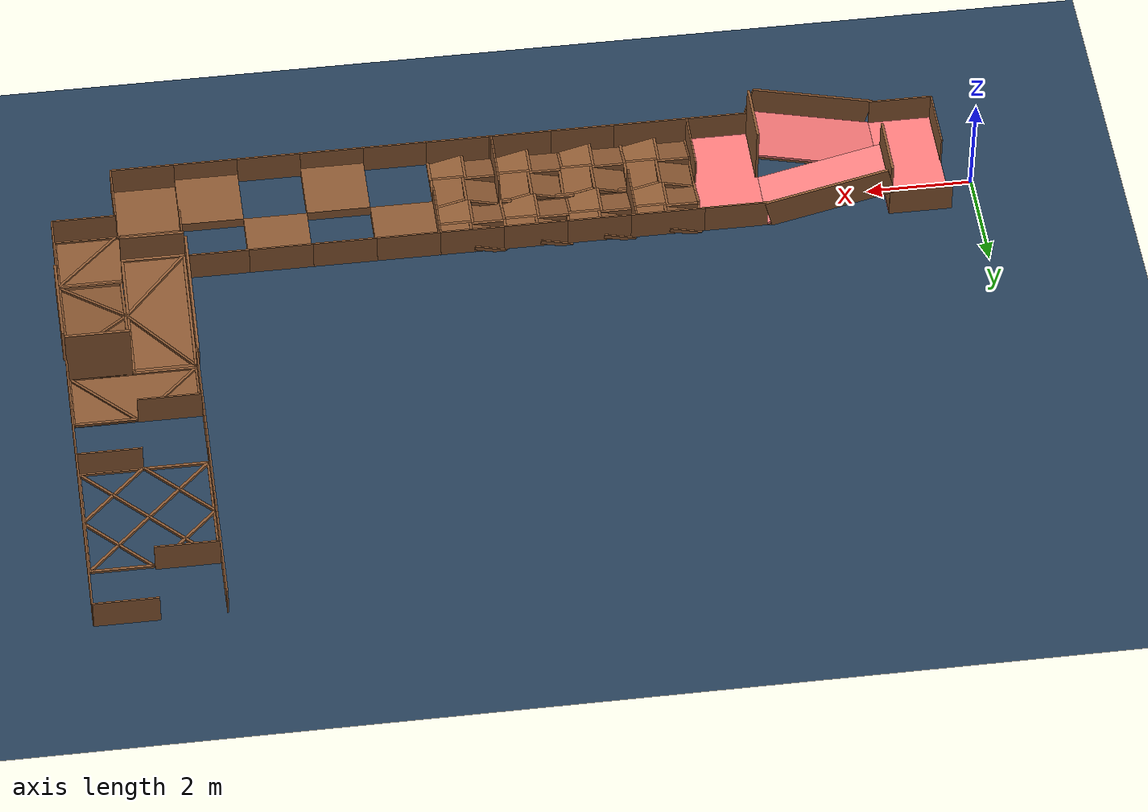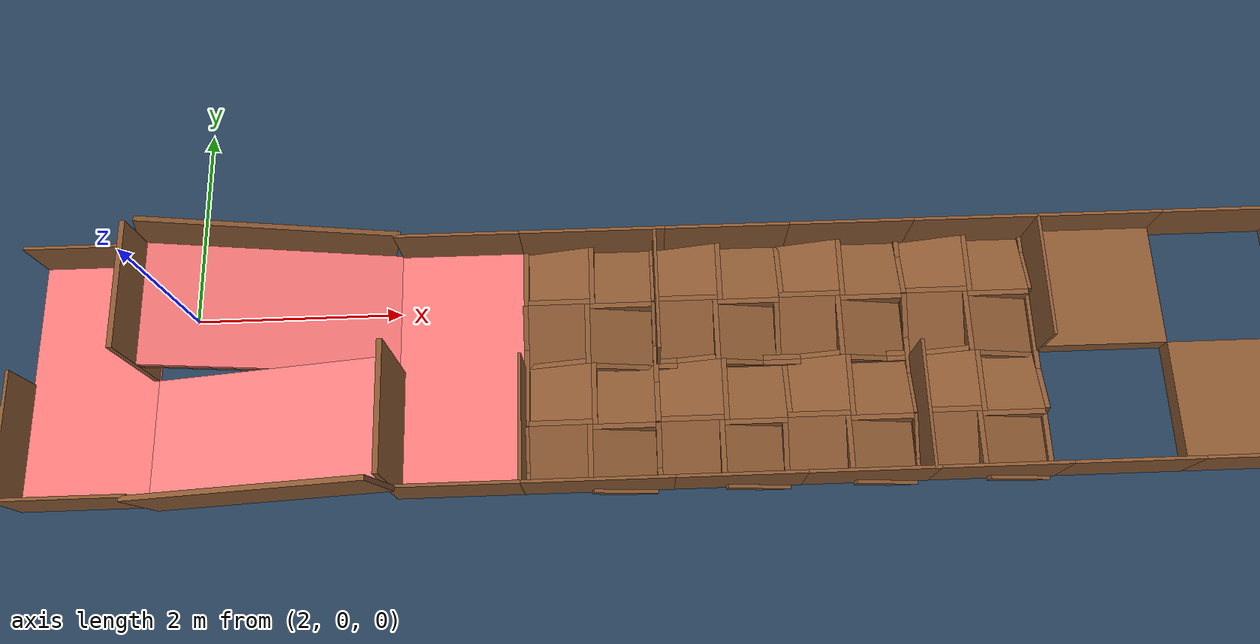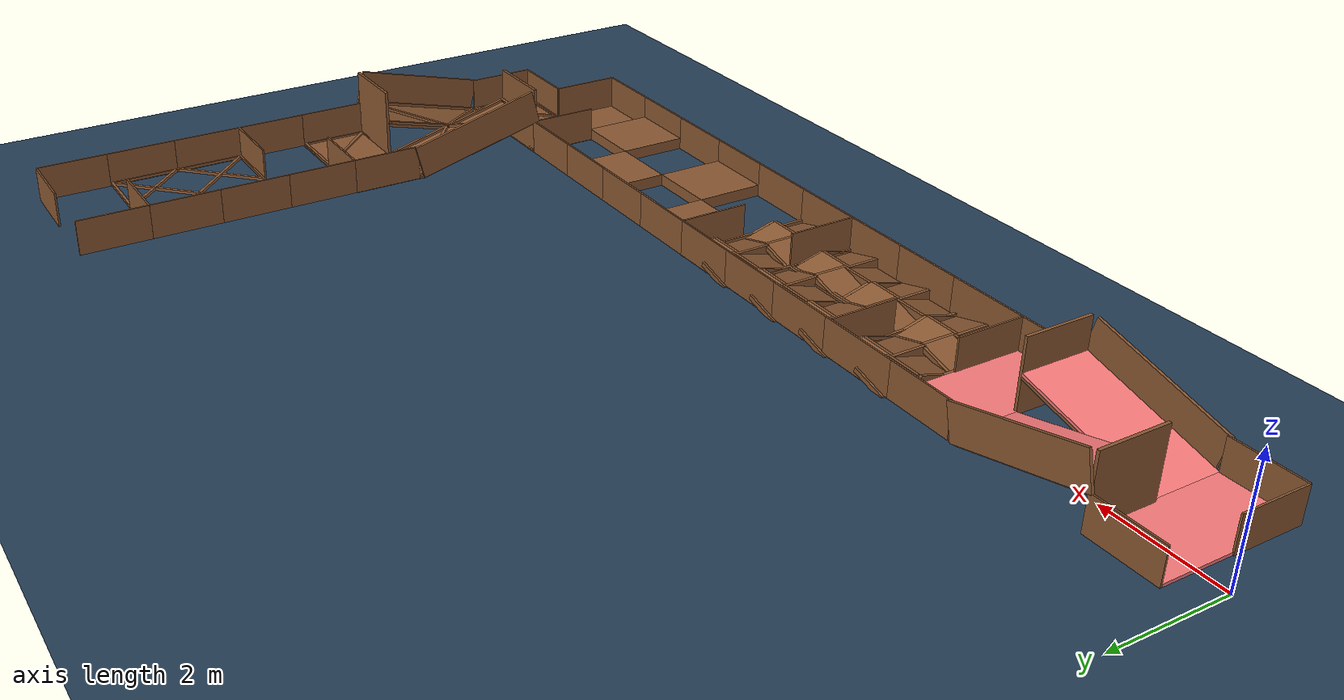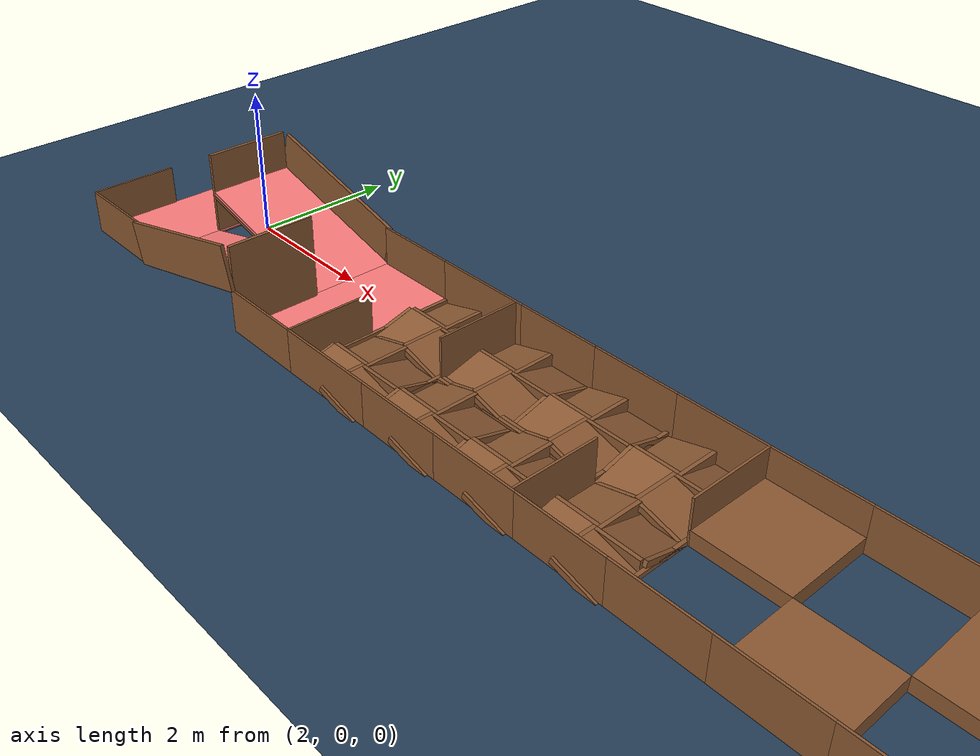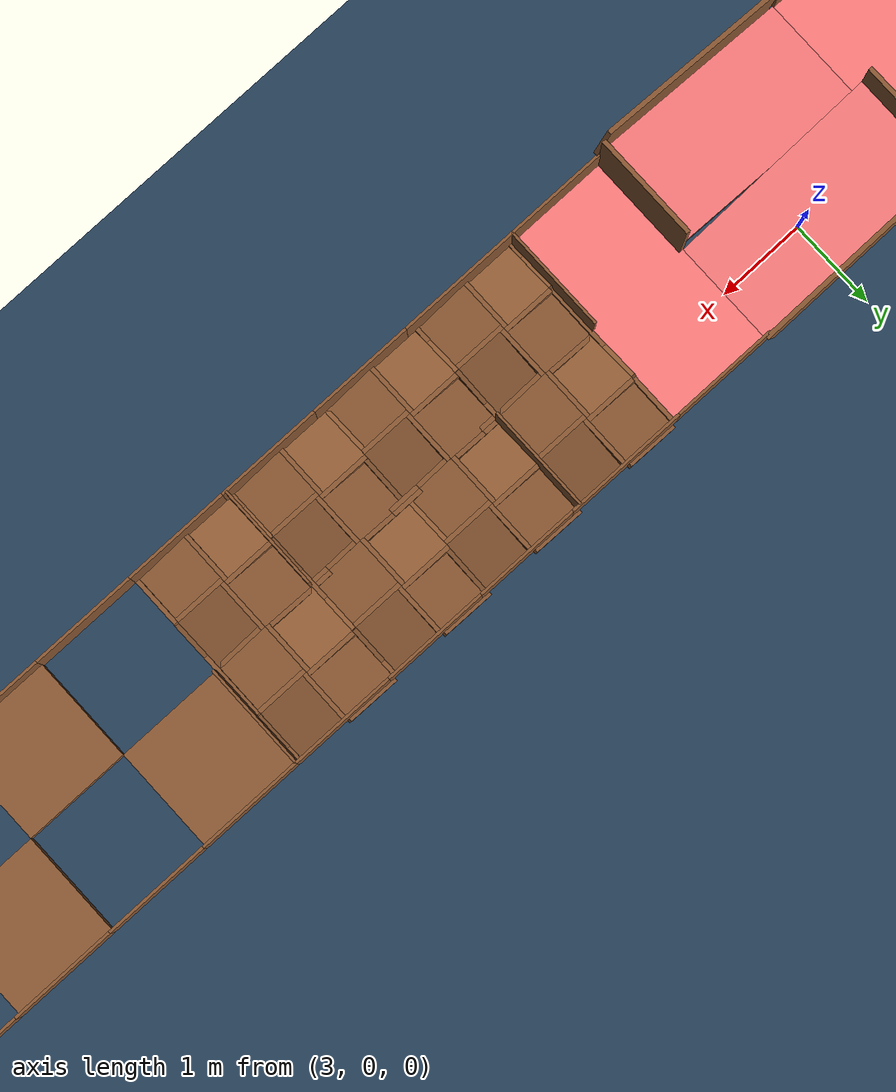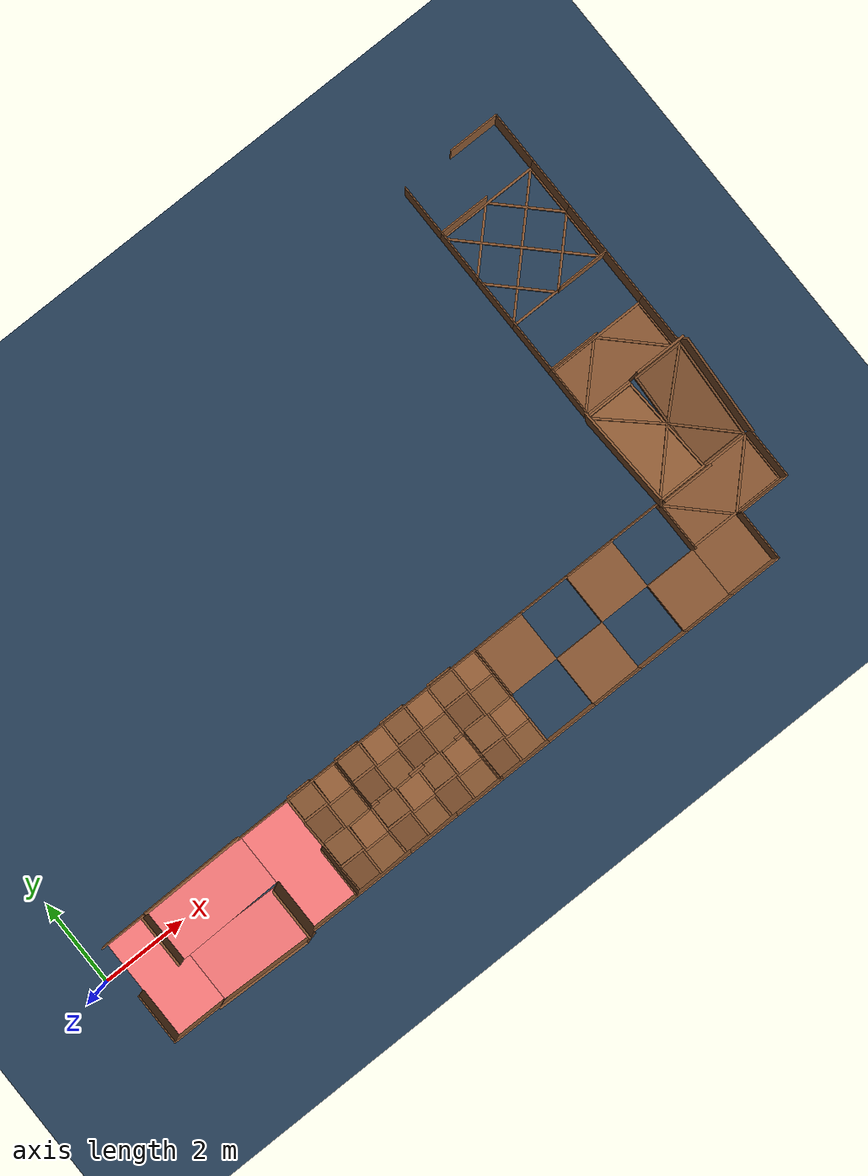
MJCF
<?xml version="1.0" encoding="utf-8"?>
<mujoco model="map_race_track">
  <statistic center="0 0 0.1" extent="0.8" />

  <visual>
    <headlight diffuse="0.6 0.6 0.6" ambient="0.3 0.3 0.3" specular="0 0 0" />
    <rgba haze="0.15 0.25 0.35 1" />
    <global azimuth="135" elevation="-25" />
    <quality shadowsize="4096" />
  </visual>
<asset>
    <texture type="skybox" builtin="gradient" rgb1="0.3 0.5 0.7" rgb2="0 0 0" width="512" height="3072" />
    <texture type="2d" name="groundplane" builtin="checker" mark="edge" rgb1="0.2 0.3 0.4" rgb2="0.1 0.2 0.3" markrgb="0.8 0.8 0.8" width="300" height="300" />
    <material name="groundplane" texture="groundplane" texuniform="true" texrepeat="5 5" reflectance="0.2" />
<texture name="wood_tex" type="2d" builtin="flat" rgb1="0.55 0.35 0.2" width="512" height="512" /><material name="wood_mat" texture="wood_tex" specular="0.2" shininess="0.1" rgba="1 1 1 1" /><texture name="sponge_tex" type="2d" builtin="flat" rgb1="1.0 0.7 0.7" width="512" height="512" /><material name="mat_sponge" texture="sponge_tex" specular="0.1" shininess="0.1" rgba="1 0.7 0.7 1" /></asset>

  <worldbody>
    <light pos="0 0 3" dir="0 0 -1" directional="true" castshadow="true" />
<geom name="floor" size="0 0 0.05" type="plane" material="groundplane" />
  <geom pos="2.833740429450787 2.220446049250313e-16 0.27579632720971" type="box" size="1.1981652640600127 0.6 0.025" quat="6.074277307224726e-17 0.12620041281310998 -7.727546580132487e-18 0.9920047660197004" material="wood_mat" friction="0.5 0.005 0.0001" /><geom pos="1.6550000000000002 2.220446049250313e-16 0.6" type="box" size="0.025 0.6 0.6" quat="6.123233995736766e-17 0.0 0.0 1.0" material="wood_mat" friction="0.5 0.005 0.0001" /><geom pos="2.833740429450787 0.6250000000000002 0.60079632720971" type="box" size="1.1981652640600127 0.025 0.3" quat="6.074277307224726e-17 0.12620041281310998 -7.727546580132487e-18 0.9920047660197004" material="wood_mat" friction="0.5 0.005 0.0001" /><geom pos="2.846259570549213 -1.2 0.27579632720971" type="box" size="1.1981652640600127 0.6 0.025" quat="0.9920047660197004 0.0 -0.12620041281310998 0.0" material="wood_mat" friction="0.5 0.005 0.0001" /><geom pos="4.025 -1.2 0.6" type="box" size="0.025 0.6 0.6" quat="1.0 0.0 0.0 0.0" material="wood_mat" friction="0.5 0.005 0.0001" /><geom pos="2.846259570549213 -1.825 0.60079632720971" type="box" size="1.1981652640600127 0.025 0.3" quat="0.9920047660197004 0.0 -0.12620041281310998 0.0" material="wood_mat" friction="0.5 0.005 0.0001" /><geom pos="4.6 -1.7999999999999998 0.3" type="box" size="0.6 0.3 0.015" quat="0.7071067811865476 0.7071067811865476 0.0 0.0" material="wood_mat" friction="0.5 0.005 0.0001" /><geom pos="1.08 -1.7999999999999998 0.3" type="box" size="0.6 0.3 0.015" quat="0.7071067811865476 0.7071067811865476 0.0 0.0" material="wood_mat" friction="0.5 0.005 0.0001" /><geom pos="4.6 0.6000000000000001 0.3" type="box" size="0.6 0.3 0.015" quat="0.7071067811865476 0.7071067811865476 0.0 0.0" material="wood_mat" friction="0.5 0.005 0.0001" /><geom pos="1.08 0.6000000000000001 0.3" type="box" size="0.6 0.3 0.015" quat="0.7071067811865476 0.7071067811865476 0.0 0.0" material="wood_mat" friction="0.5 0.005 0.0001" /><geom pos="0.48 -1.2 0.3" type="box" size="0.3 0.6 0.015" quat="0.7071067811865476 0.0 0.7071067811865476 0.0" material="wood_mat" friction="0.5 0.005 0.0001" /><geom pos="1.08 -0.6 0.025" type="box" size="0.6 1.2 0.025" quat="1.0 0.0 0.0 0.0" material="mat_sponge" solref="0.03 1" priority="1" solmix="1" friction="1.2 0.005 0.0001" /><geom pos="4.6 -0.6 0.025" type="box" size="0.6 1.2 0.025" quat="1.0 0.0 0.0 0.0" material="mat_sponge" solref="0.03 1" priority="1" solmix="1" friction="1.2 0.005 0.0001" /><geom pos="2.833740429450787 2.220446049250313e-16 0.32579632720970997" type="box" size="1.1981652640600127 0.6 0.025" quat="6.074277307224726e-17 0.12620041281310998 -7.727546580132487e-18 0.9920047660197004" material="mat_sponge" solref="0.03 1" priority="1" solmix="1" friction="1.2 0.005 0.0001" /><geom pos="2.846259570549213 -1.2 0.32579632720970997" type="box" size="1.1981652640600127 0.6 0.025" quat="0.9920047660197004 0.0 -0.12620041281310998 0.0" material="mat_sponge" solref="0.03 1" priority="1" solmix="1" friction="1.2 0.005 0.0001" /><geom pos="5.225 -0.6 0.0" type="box" size="1.2 0.025 0.05" quat="0.7071067811865476 0.0 0.0 0.7071067811865476" material="wood_mat" friction="0.5 0.005 0.0001" /><geom pos="5.55 -1.4934084623528479 0.05788461836407774" type="box" size="0.311004823113726 0.3 0.025" quat="0.7008236699478855 0.09405415270352165 -0.09405415270352165 0.7008236699478855" material="wood_mat" friction="0.5 0.005 0.0001" /><geom pos="5.55 -1.1749999999999998 0.082" type="box" size="0.025 0.3 0.082" quat="0.7071067811865476 0.0 0.0 0.7071067811865476" material="wood_mat" friction="0.5 0.005 0.0001" /><geom pos="5.875 -1.4934084623528479 0.04188461836407773" type="box" size="0.311004823113726 0.025 0.041" quat="0.7008236699478855 0.09405415270352165 -0.09405415270352165 0.7008236699478855" material="wood_mat" friction="0.5 0.005 0.0001" /><geom pos="5.225 -1.4934084623528479 0.04188461836407773" type="box" size="0.311004823113726 0.025 0.041" quat="0.7008236699478855 0.09405415270352165 -0.09405415270352165 0.7008236699478855" material="wood_mat" friction="0.5 0.005 0.0001" /><geom pos="5.556591537647153 -0.8999999999999999 0.05788461836407774" type="box" size="0.311004823113726 0.3 0.025" quat="0.9911143388723852 0.0 -0.1330126583508304 0.0" material="wood_mat" friction="0.5 0.005 0.0001" /><geom pos="5.875 -0.8999999999999999 0.082" type="box" size="0.025 0.3 0.082" quat="1.0 0.0 0.0 0.0" material="wood_mat" friction="0.5 0.005 0.0001" /><geom pos="5.556591537647153 -1.225 0.04188461836407773" type="box" size="0.311004823113726 0.025 0.041" quat="0.9911143388723852 0.0 -0.1330126583508304 0.0" material="wood_mat" friction="0.5 0.005 0.0001" /><geom pos="5.556591537647153 -0.575 0.04188461836407773" type="box" size="0.311004823113726 0.025 0.041" quat="0.9911143388723852 0.0 -0.1330126583508304 0.0" material="wood_mat" friction="0.5 0.005 0.0001" /><geom pos="6.143408462352848 -1.5 0.05788461836407774" type="box" size="0.311004823113726 0.3 0.025" quat="6.068825013445559e-17 0.1330126583508304 -8.144676314771245e-18 0.9911143388723852" material="wood_mat" friction="0.5 0.005 0.0001" /><geom pos="5.825 -1.5 0.082" type="box" size="0.025 0.3 0.082" quat="6.123233995736766e-17 0.0 0.0 1.0" material="wood_mat" friction="0.5 0.005 0.0001" /><geom pos="6.143408462352848 -1.1749999999999998 0.04188461836407773" type="box" size="0.311004823113726 0.025 0.041" quat="6.068825013445559e-17 0.1330126583508304 -8.144676314771245e-18 0.9911143388723852" material="wood_mat" friction="0.5 0.005 0.0001" /><geom pos="6.143408462352848 -1.825 0.04188461836407773" type="box" size="0.311004823113726 0.025 0.041" quat="6.068825013445559e-17 0.1330126583508304 -8.144676314771245e-18 0.9911143388723852" material="wood_mat" friction="0.5 0.005 0.0001" /><geom pos="6.15 -0.9065915376471521 0.05788461836407774" type="box" size="0.311004823113726 0.3 0.025" quat="-0.7008236699478854 0.09405415270352165 0.09405415270352163 0.7008236699478855" material="wood_mat" friction="0.5 0.005 0.0001" /><geom pos="6.15 -1.225 0.082" type="box" size="0.025 0.3 0.082" quat="-0.7071067811865475 -0.0 0.0 0.7071067811865476" material="wood_mat" friction="0.5 0.005 0.0001" /><geom pos="5.824999999999999 -0.9065915376471521 0.04188461836407773" type="box" size="0.311004823113726 0.025 0.041" quat="-0.7008236699478854 0.09405415270352165 0.09405415270352163 0.7008236699478855" material="wood_mat" friction="0.5 0.005 0.0001" /><geom pos="6.475 -0.9065915376471521 0.04188461836407773" type="box" size="0.311004823113726 0.025 0.041" quat="-0.7008236699478854 0.09405415270352165 0.09405415270352163 0.7008236699478855" material="wood_mat" friction="0.5 0.005 0.0001" /><geom pos="5.55 -0.2934084623528479 0.05788461836407774" type="box" size="0.311004823113726 0.3 0.025" quat="0.7008236699478855 0.09405415270352165 -0.09405415270352165 0.7008236699478855" material="wood_mat" friction="0.5 0.005 0.0001" /><geom pos="5.55 0.025000000000000133 0.082" type="box" size="0.025 0.3 0.082" quat="0.7071067811865476 0.0 0.0 0.7071067811865476" material="wood_mat" friction="0.5 0.005 0.0001" /><geom pos="5.875 -0.2934084623528479 0.04188461836407773" type="box" size="0.311004823113726 0.025 0.041" quat="0.7008236699478855 0.09405415270352165 -0.09405415270352165 0.7008236699478855" material="wood_mat" friction="0.5 0.005 0.0001" /><geom pos="5.225 -0.2934084623528479 0.04188461836407773" type="box" size="0.311004823113726 0.025 0.041" quat="0.7008236699478855 0.09405415270352165 -0.09405415270352165 0.7008236699478855" material="wood_mat" friction="0.5 0.005 0.0001" /><geom pos="5.556591537647153 0.30000000000000004 0.05788461836407774" type="box" size="0.311004823113726 0.3 0.025" quat="0.9911143388723852 0.0 -0.1330126583508304 0.0" material="wood_mat" friction="0.5 0.005 0.0001" /><geom pos="5.875 0.30000000000000004 0.082" type="box" size="0.025 0.3 0.082" quat="1.0 0.0 0.0 0.0" material="wood_mat" friction="0.5 0.005 0.0001" /><geom pos="5.556591537647153 -0.02499999999999991 0.04188461836407773" type="box" size="0.311004823113726 0.025 0.041" quat="0.9911143388723852 0.0 -0.1330126583508304 0.0" material="wood_mat" friction="0.5 0.005 0.0001" /><geom pos="5.556591537647153 0.625 0.04188461836407773" type="box" size="0.311004823113726 0.025 0.041" quat="0.9911143388723852 0.0 -0.1330126583508304 0.0" material="wood_mat" friction="0.5 0.005 0.0001" /><geom pos="6.143408462352848 -0.30000000000000004 0.05788461836407774" type="box" size="0.311004823113726 0.3 0.025" quat="6.068825013445559e-17 0.1330126583508304 -8.144676314771245e-18 0.9911143388723852" material="wood_mat" friction="0.5 0.005 0.0001" /><geom pos="5.825 -0.29999999999999993 0.082" type="box" size="0.025 0.3 0.082" quat="6.123233995736766e-17 0.0 0.0 1.0" material="wood_mat" friction="0.5 0.005 0.0001" /><geom pos="6.143408462352848 0.025000000000000133 0.04188461836407773" type="box" size="0.311004823113726 0.025 0.041" quat="6.068825013445559e-17 0.1330126583508304 -8.144676314771245e-18 0.9911143388723852" material="wood_mat" friction="0.5 0.005 0.0001" /><geom pos="6.143408462352848 -0.625 0.04188461836407773" type="box" size="0.311004823113726 0.025 0.041" quat="6.068825013445559e-17 0.1330126583508304 -8.144676314771245e-18 0.9911143388723852" material="wood_mat" friction="0.5 0.005 0.0001" /><geom pos="6.15 0.2934084623528477 0.05788461836407774" type="box" size="0.311004823113726 0.3 0.025" quat="-0.7008236699478854 0.09405415270352165 0.09405415270352163 0.7008236699478855" material="wood_mat" friction="0.5 0.005 0.0001" /><geom pos="6.15 -0.025000000000000133 0.082" type="box" size="0.025 0.3 0.082" quat="-0.7071067811865475 -0.0 0.0 0.7071067811865476" material="wood_mat" friction="0.5 0.005 0.0001" /><geom pos="5.824999999999999 0.2934084623528479 0.04188461836407773" type="box" size="0.311004823113726 0.025 0.041" quat="-0.7008236699478854 0.09405415270352165 0.09405415270352163 0.7008236699478855" material="wood_mat" friction="0.5 0.005 0.0001" /><geom pos="6.475 0.2934084623528477 0.04188461836407773" type="box" size="0.311004823113726 0.025 0.041" quat="-0.7008236699478854 0.09405415270352165 0.09405415270352163 0.7008236699478855" material="wood_mat" friction="0.5 0.005 0.0001" /><geom pos="6.475 -0.6 0.0" type="box" size="1.2 0.025 0.05" quat="0.7071067811865476 0.0 0.0 0.7071067811865476" material="wood_mat" friction="0.5 0.005 0.0001" /><geom pos="6.800000000000001 -1.4934084623528479 0.05788461836407774" type="box" size="0.311004823113726 0.3 0.025" quat="0.7008236699478855 0.09405415270352165 -0.09405415270352165 0.7008236699478855" material="wood_mat" friction="0.5 0.005 0.0001" /><geom pos="6.800000000000001 -1.1749999999999998 0.082" type="box" size="0.025 0.3 0.082" quat="0.7071067811865476 0.0 0.0 0.7071067811865476" material="wood_mat" friction="0.5 0.005 0.0001" /><geom pos="7.125 -1.4934084623528479 0.04188461836407773" type="box" size="0.311004823113726 0.025 0.041" quat="0.7008236699478855 0.09405415270352165 -0.09405415270352165 0.7008236699478855" material="wood_mat" friction="0.5 0.005 0.0001" /><geom pos="6.475 -1.4934084623528479 0.04188461836407773" type="box" size="0.311004823113726 0.025 0.041" quat="0.7008236699478855 0.09405415270352165 -0.09405415270352165 0.7008236699478855" material="wood_mat" friction="0.5 0.005 0.0001" /><geom pos="6.806591537647153 -0.8999999999999999 0.05788461836407774" type="box" size="0.311004823113726 0.3 0.025" quat="0.9911143388723852 0.0 -0.1330126583508304 0.0" material="wood_mat" friction="0.5 0.005 0.0001" /><geom pos="7.125 -0.8999999999999999 0.082" type="box" size="0.025 0.3 0.082" quat="1.0 0.0 0.0 0.0" material="wood_mat" friction="0.5 0.005 0.0001" /><geom pos="6.806591537647153 -1.225 0.04188461836407773" type="box" size="0.311004823113726 0.025 0.041" quat="0.9911143388723852 0.0 -0.1330126583508304 0.0" material="wood_mat" friction="0.5 0.005 0.0001" /><geom pos="6.806591537647153 -0.575 0.04188461836407773" type="box" size="0.311004823113726 0.025 0.041" quat="0.9911143388723852 0.0 -0.1330126583508304 0.0" material="wood_mat" friction="0.5 0.005 0.0001" /><geom pos="7.393408462352848 -1.5 0.05788461836407774" type="box" size="0.311004823113726 0.3 0.025" quat="6.068825013445559e-17 0.1330126583508304 -8.144676314771245e-18 0.9911143388723852" material="wood_mat" friction="0.5 0.005 0.0001" /><geom pos="7.075 -1.5 0.082" type="box" size="0.025 0.3 0.082" quat="6.123233995736766e-17 0.0 0.0 1.0" material="wood_mat" friction="0.5 0.005 0.0001" /><geom pos="7.393408462352848 -1.1749999999999998 0.04188461836407773" type="box" size="0.311004823113726 0.025 0.041" quat="6.068825013445559e-17 0.1330126583508304 -8.144676314771245e-18 0.9911143388723852" material="wood_mat" friction="0.5 0.005 0.0001" /><geom pos="7.393408462352848 -1.825 0.04188461836407773" type="box" size="0.311004823113726 0.025 0.041" quat="6.068825013445559e-17 0.1330126583508304 -8.144676314771245e-18 0.9911143388723852" material="wood_mat" friction="0.5 0.005 0.0001" /><geom pos="7.4 -0.9065915376471521 0.05788461836407774" type="box" size="0.311004823113726 0.3 0.025" quat="-0.7008236699478854 0.09405415270352165 0.09405415270352163 0.7008236699478855" material="wood_mat" friction="0.5 0.005 0.0001" /><geom pos="7.4 -1.225 0.082" type="box" size="0.025 0.3 0.082" quat="-0.7071067811865475 -0.0 0.0 0.7071067811865476" material="wood_mat" friction="0.5 0.005 0.0001" /><geom pos="7.074999999999999 -0.9065915376471521 0.04188461836407773" type="box" size="0.311004823113726 0.025 0.041" quat="-0.7008236699478854 0.09405415270352165 0.09405415270352163 0.7008236699478855" material="wood_mat" friction="0.5 0.005 0.0001" /><geom pos="7.725 -0.9065915376471521 0.04188461836407773" type="box" size="0.311004823113726 0.025 0.041" quat="-0.7008236699478854 0.09405415270352165 0.09405415270352163 0.7008236699478855" material="wood_mat" friction="0.5 0.005 0.0001" /><geom pos="6.800000000000001 -0.2934084623528479 0.05788461836407774" type="box" size="0.311004823113726 0.3 0.025" quat="0.7008236699478855 0.09405415270352165 -0.09405415270352165 0.7008236699478855" material="wood_mat" friction="0.5 0.005 0.0001" /><geom pos="6.800000000000001 0.025000000000000133 0.082" type="box" size="0.025 0.3 0.082" quat="0.7071067811865476 0.0 0.0 0.7071067811865476" material="wood_mat" friction="0.5 0.005 0.0001" /><geom pos="7.125 -0.2934084623528479 0.04188461836407773" type="box" size="0.311004823113726 0.025 0.041" quat="0.7008236699478855 0.09405415270352165 -0.09405415270352165 0.7008236699478855" material="wood_mat" friction="0.5 0.005 0.0001" /><geom pos="6.475 -0.2934084623528479 0.04188461836407773" type="box" size="0.311004823113726 0.025 0.041" quat="0.7008236699478855 0.09405415270352165 -0.09405415270352165 0.7008236699478855" material="wood_mat" friction="0.5 0.005 0.0001" /><geom pos="6.806591537647153 0.30000000000000004 0.05788461836407774" type="box" size="0.311004823113726 0.3 0.025" quat="0.9911143388723852 0.0 -0.1330126583508304 0.0" material="wood_mat" friction="0.5 0.005 0.0001" /><geom pos="7.125 0.30000000000000004 0.082" type="box" size="0.025 0.3 0.082" quat="1.0 0.0 0.0 0.0" material="wood_mat" friction="0.5 0.005 0.0001" /><geom pos="6.806591537647153 -0.02499999999999991 0.04188461836407773" type="box" size="0.311004823113726 0.025 0.041" quat="0.9911143388723852 0.0 -0.1330126583508304 0.0" material="wood_mat" friction="0.5 0.005 0.0001" /><geom pos="6.806591537647153 0.625 0.04188461836407773" type="box" size="0.311004823113726 0.025 0.041" quat="0.9911143388723852 0.0 -0.1330126583508304 0.0" material="wood_mat" friction="0.5 0.005 0.0001" /><geom pos="7.393408462352848 -0.30000000000000004 0.05788461836407774" type="box" size="0.311004823113726 0.3 0.025" quat="6.068825013445559e-17 0.1330126583508304 -8.144676314771245e-18 0.9911143388723852" material="wood_mat" friction="0.5 0.005 0.0001" /><geom pos="7.075 -0.29999999999999993 0.082" type="box" size="0.025 0.3 0.082" quat="6.123233995736766e-17 0.0 0.0 1.0" material="wood_mat" friction="0.5 0.005 0.0001" /><geom pos="7.393408462352848 0.025000000000000133 0.04188461836407773" type="box" size="0.311004823113726 0.025 0.041" quat="6.068825013445559e-17 0.1330126583508304 -8.144676314771245e-18 0.9911143388723852" material="wood_mat" friction="0.5 0.005 0.0001" /><geom pos="7.393408462352848 -0.625 0.04188461836407773" type="box" size="0.311004823113726 0.025 0.041" quat="6.068825013445559e-17 0.1330126583508304 -8.144676314771245e-18 0.9911143388723852" material="wood_mat" friction="0.5 0.005 0.0001" /><geom pos="7.4 0.2934084623528477 0.05788461836407774" type="box" size="0.311004823113726 0.3 0.025" quat="-0.7008236699478854 0.09405415270352165 0.09405415270352163 0.7008236699478855" material="wood_mat" friction="0.5 0.005 0.0001" /><geom pos="7.4 -0.025000000000000133 0.082" type="box" size="0.025 0.3 0.082" quat="-0.7071067811865475 -0.0 0.0 0.7071067811865476" material="wood_mat" friction="0.5 0.005 0.0001" /><geom pos="7.074999999999999 0.2934084623528479 0.04188461836407773" type="box" size="0.311004823113726 0.025 0.041" quat="-0.7008236699478854 0.09405415270352165 0.09405415270352163 0.7008236699478855" material="wood_mat" friction="0.5 0.005 0.0001" /><geom pos="7.725 0.2934084623528477 0.04188461836407773" type="box" size="0.311004823113726 0.025 0.041" quat="-0.7008236699478854 0.09405415270352165 0.09405415270352163 0.7008236699478855" material="wood_mat" friction="0.5 0.005 0.0001" /><geom pos="8.0 -1.4934084623528479 0.05788461836407774" type="box" size="0.311004823113726 0.3 0.025" quat="0.7008236699478855 0.09405415270352165 -0.09405415270352165 0.7008236699478855" material="wood_mat" friction="0.5 0.005 0.0001" /><geom pos="8.0 -1.1749999999999998 0.082" type="box" size="0.025 0.3 0.082" quat="0.7071067811865476 0.0 0.0 0.7071067811865476" material="wood_mat" friction="0.5 0.005 0.0001" /><geom pos="8.325 -1.4934084623528479 0.04188461836407773" type="box" size="0.311004823113726 0.025 0.041" quat="0.7008236699478855 0.09405415270352165 -0.09405415270352165 0.7008236699478855" material="wood_mat" friction="0.5 0.005 0.0001" /><geom pos="7.675 -1.4934084623528479 0.04188461836407773" type="box" size="0.311004823113726 0.025 0.041" quat="0.7008236699478855 0.09405415270352165 -0.09405415270352165 0.7008236699478855" material="wood_mat" friction="0.5 0.005 0.0001" /><geom pos="8.006591537647152 -0.8999999999999999 0.05788461836407774" type="box" size="0.311004823113726 0.3 0.025" quat="0.9911143388723852 0.0 -0.1330126583508304 0.0" material="wood_mat" friction="0.5 0.005 0.0001" /><geom pos="8.325 -0.8999999999999999 0.082" type="box" size="0.025 0.3 0.082" quat="1.0 0.0 0.0 0.0" material="wood_mat" friction="0.5 0.005 0.0001" /><geom pos="8.006591537647152 -1.225 0.04188461836407773" type="box" size="0.311004823113726 0.025 0.041" quat="0.9911143388723852 0.0 -0.1330126583508304 0.0" material="wood_mat" friction="0.5 0.005 0.0001" /><geom pos="8.006591537647152 -0.575 0.04188461836407773" type="box" size="0.311004823113726 0.025 0.041" quat="0.9911143388723852 0.0 -0.1330126583508304 0.0" material="wood_mat" friction="0.5 0.005 0.0001" /><geom pos="8.593408462352848 -1.5 0.05788461836407774" type="box" size="0.311004823113726 0.3 0.025" quat="6.068825013445559e-17 0.1330126583508304 -8.144676314771245e-18 0.9911143388723852" material="wood_mat" friction="0.5 0.005 0.0001" /><geom pos="8.274999999999999 -1.5 0.082" type="box" size="0.025 0.3 0.082" quat="6.123233995736766e-17 0.0 0.0 1.0" material="wood_mat" friction="0.5 0.005 0.0001" /><geom pos="8.593408462352848 -1.1749999999999998 0.04188461836407773" type="box" size="0.311004823113726 0.025 0.041" quat="6.068825013445559e-17 0.1330126583508304 -8.144676314771245e-18 0.9911143388723852" material="wood_mat" friction="0.5 0.005 0.0001" /><geom pos="8.593408462352848 -1.825 0.04188461836407773" type="box" size="0.311004823113726 0.025 0.041" quat="6.068825013445559e-17 0.1330126583508304 -8.144676314771245e-18 0.9911143388723852" material="wood_mat" friction="0.5 0.005 0.0001" /><geom pos="8.6 -0.9065915376471521 0.05788461836407774" type="box" size="0.311004823113726 0.3 0.025" quat="-0.7008236699478854 0.09405415270352165 0.09405415270352163 0.7008236699478855" material="wood_mat" friction="0.5 0.005 0.0001" /><geom pos="8.6 -1.225 0.082" type="box" size="0.025 0.3 0.082" quat="-0.7071067811865475 -0.0 0.0 0.7071067811865476" material="wood_mat" friction="0.5 0.005 0.0001" /><geom pos="8.274999999999999 -0.9065915376471521 0.04188461836407773" type="box" size="0.311004823113726 0.025 0.041" quat="-0.7008236699478854 0.09405415270352165 0.09405415270352163 0.7008236699478855" material="wood_mat" friction="0.5 0.005 0.0001" /><geom pos="8.925 -0.9065915376471521 0.04188461836407773" type="box" size="0.311004823113726 0.025 0.041" quat="-0.7008236699478854 0.09405415270352165 0.09405415270352163 0.7008236699478855" material="wood_mat" friction="0.5 0.005 0.0001" /><geom pos="8.0 -0.2934084623528479 0.05788461836407774" type="box" size="0.311004823113726 0.3 0.025" quat="0.7008236699478855 0.09405415270352165 -0.09405415270352165 0.7008236699478855" material="wood_mat" friction="0.5 0.005 0.0001" /><geom pos="8.0 0.025000000000000133 0.082" type="box" size="0.025 0.3 0.082" quat="0.7071067811865476 0.0 0.0 0.7071067811865476" material="wood_mat" friction="0.5 0.005 0.0001" /><geom pos="8.325 -0.2934084623528479 0.04188461836407773" type="box" size="0.311004823113726 0.025 0.041" quat="0.7008236699478855 0.09405415270352165 -0.09405415270352165 0.7008236699478855" material="wood_mat" friction="0.5 0.005 0.0001" /><geom pos="7.675 -0.2934084623528479 0.04188461836407773" type="box" size="0.311004823113726 0.025 0.041" quat="0.7008236699478855 0.09405415270352165 -0.09405415270352165 0.7008236699478855" material="wood_mat" friction="0.5 0.005 0.0001" /><geom pos="8.006591537647152 0.30000000000000004 0.05788461836407774" type="box" size="0.311004823113726 0.3 0.025" quat="0.9911143388723852 0.0 -0.1330126583508304 0.0" material="wood_mat" friction="0.5 0.005 0.0001" /><geom pos="8.325 0.30000000000000004 0.082" type="box" size="0.025 0.3 0.082" quat="1.0 0.0 0.0 0.0" material="wood_mat" friction="0.5 0.005 0.0001" /><geom pos="8.006591537647152 -0.02499999999999991 0.04188461836407773" type="box" size="0.311004823113726 0.025 0.041" quat="0.9911143388723852 0.0 -0.1330126583508304 0.0" material="wood_mat" friction="0.5 0.005 0.0001" /><geom pos="8.006591537647152 0.625 0.04188461836407773" type="box" size="0.311004823113726 0.025 0.041" quat="0.9911143388723852 0.0 -0.1330126583508304 0.0" material="wood_mat" friction="0.5 0.005 0.0001" /><geom pos="8.593408462352848 -0.30000000000000004 0.05788461836407774" type="box" size="0.311004823113726 0.3 0.025" quat="6.068825013445559e-17 0.1330126583508304 -8.144676314771245e-18 0.9911143388723852" material="wood_mat" friction="0.5 0.005 0.0001" /><geom pos="8.274999999999999 -0.29999999999999993 0.082" type="box" size="0.025 0.3 0.082" quat="6.123233995736766e-17 0.0 0.0 1.0" material="wood_mat" friction="0.5 0.005 0.0001" /><geom pos="8.593408462352848 0.025000000000000133 0.04188461836407773" type="box" size="0.311004823113726 0.025 0.041" quat="6.068825013445559e-17 0.1330126583508304 -8.144676314771245e-18 0.9911143388723852" material="wood_mat" friction="0.5 0.005 0.0001" /><geom pos="8.593408462352848 -0.625 0.04188461836407773" type="box" size="0.311004823113726 0.025 0.041" quat="6.068825013445559e-17 0.1330126583508304 -8.144676314771245e-18 0.9911143388723852" material="wood_mat" friction="0.5 0.005 0.0001" /><geom pos="8.6 0.2934084623528477 0.05788461836407774" type="box" size="0.311004823113726 0.3 0.025" quat="-0.7008236699478854 0.09405415270352165 0.09405415270352163 0.7008236699478855" material="wood_mat" friction="0.5 0.005 0.0001" /><geom pos="8.6 -0.025000000000000133 0.082" type="box" size="0.025 0.3 0.082" quat="-0.7071067811865475 -0.0 0.0 0.7071067811865476" material="wood_mat" friction="0.5 0.005 0.0001" /><geom pos="8.274999999999999 0.2934084623528479 0.04188461836407773" type="box" size="0.311004823113726 0.025 0.041" quat="-0.7008236699478854 0.09405415270352165 0.09405415270352163 0.7008236699478855" material="wood_mat" friction="0.5 0.005 0.0001" /><geom pos="8.925 0.2934084623528477 0.04188461836407773" type="box" size="0.311004823113726 0.025 0.041" quat="-0.7008236699478854 0.09405415270352165 0.09405415270352163 0.7008236699478855" material="wood_mat" friction="0.5 0.005 0.0001" /><geom pos="7.7 -0.625 0.0" type="box" size="1.2 0.025 0.05" quat="1.0 0.0 0.0 0.0" material="wood_mat" friction="0.5 0.005 0.0001" /><geom pos="7.7 -0.575 0.0" type="box" size="1.2 0.025 0.05" quat="1.0 0.0 0.0 0.0" material="wood_mat" friction="0.5 0.005 0.0001" /><geom pos="8.925 -0.6 0.0" type="box" size="1.2 0.025 0.05" quat="0.7071067811865476 0.0 0.0 0.7071067811865476" material="wood_mat" friction="0.5 0.005 0.0001" /><geom pos="9.25 -1.4934084623528479 0.05788461836407774" type="box" size="0.311004823113726 0.3 0.025" quat="0.7008236699478855 0.09405415270352165 -0.09405415270352165 0.7008236699478855" material="wood_mat" friction="0.5 0.005 0.0001" /><geom pos="9.25 -1.1749999999999998 0.082" type="box" size="0.025 0.3 0.082" quat="0.7071067811865476 0.0 0.0 0.7071067811865476" material="wood_mat" friction="0.5 0.005 0.0001" /><geom pos="9.575 -1.4934084623528479 0.04188461836407773" type="box" size="0.311004823113726 0.025 0.041" quat="0.7008236699478855 0.09405415270352165 -0.09405415270352165 0.7008236699478855" material="wood_mat" friction="0.5 0.005 0.0001" /><geom pos="8.925 -1.4934084623528479 0.04188461836407773" type="box" size="0.311004823113726 0.025 0.041" quat="0.7008236699478855 0.09405415270352165 -0.09405415270352165 0.7008236699478855" material="wood_mat" friction="0.5 0.005 0.0001" /><geom pos="9.256591537647152 -0.8999999999999999 0.05788461836407774" type="box" size="0.311004823113726 0.3 0.025" quat="0.9911143388723852 0.0 -0.1330126583508304 0.0" material="wood_mat" friction="0.5 0.005 0.0001" /><geom pos="9.575 -0.8999999999999999 0.082" type="box" size="0.025 0.3 0.082" quat="1.0 0.0 0.0 0.0" material="wood_mat" friction="0.5 0.005 0.0001" /><geom pos="9.256591537647152 -1.225 0.04188461836407773" type="box" size="0.311004823113726 0.025 0.041" quat="0.9911143388723852 0.0 -0.1330126583508304 0.0" material="wood_mat" friction="0.5 0.005 0.0001" /><geom pos="9.256591537647152 -0.575 0.04188461836407773" type="box" size="0.311004823113726 0.025 0.041" quat="0.9911143388723852 0.0 -0.1330126583508304 0.0" material="wood_mat" friction="0.5 0.005 0.0001" /><geom pos="9.843408462352848 -1.5 0.05788461836407774" type="box" size="0.311004823113726 0.3 0.025" quat="6.068825013445559e-17 0.1330126583508304 -8.144676314771245e-18 0.9911143388723852" material="wood_mat" friction="0.5 0.005 0.0001" /><geom pos="9.524999999999999 -1.5 0.082" type="box" size="0.025 0.3 0.082" quat="6.123233995736766e-17 0.0 0.0 1.0" material="wood_mat" friction="0.5 0.005 0.0001" /><geom pos="9.843408462352848 -1.1749999999999998 0.04188461836407773" type="box" size="0.311004823113726 0.025 0.041" quat="6.068825013445559e-17 0.1330126583508304 -8.144676314771245e-18 0.9911143388723852" material="wood_mat" friction="0.5 0.005 0.0001" /><geom pos="9.843408462352848 -1.825 0.04188461836407773" type="box" size="0.311004823113726 0.025 0.041" quat="6.068825013445559e-17 0.1330126583508304 -8.144676314771245e-18 0.9911143388723852" material="wood_mat" friction="0.5 0.005 0.0001" /><geom pos="9.85 -0.9065915376471521 0.05788461836407774" type="box" size="0.311004823113726 0.3 0.025" quat="-0.7008236699478854 0.09405415270352165 0.09405415270352163 0.7008236699478855" material="wood_mat" friction="0.5 0.005 0.0001" /><geom pos="9.85 -1.225 0.082" type="box" size="0.025 0.3 0.082" quat="-0.7071067811865475 -0.0 0.0 0.7071067811865476" material="wood_mat" friction="0.5 0.005 0.0001" /><geom pos="9.524999999999999 -0.9065915376471521 0.04188461836407773" type="box" size="0.311004823113726 0.025 0.041" quat="-0.7008236699478854 0.09405415270352165 0.09405415270352163 0.7008236699478855" material="wood_mat" friction="0.5 0.005 0.0001" /><geom pos="10.175 -0.9065915376471521 0.04188461836407773" type="box" size="0.311004823113726 0.025 0.041" quat="-0.7008236699478854 0.09405415270352165 0.09405415270352163 0.7008236699478855" material="wood_mat" friction="0.5 0.005 0.0001" /><geom pos="9.25 -0.2934084623528479 0.05788461836407774" type="box" size="0.311004823113726 0.3 0.025" quat="0.7008236699478855 0.09405415270352165 -0.09405415270352165 0.7008236699478855" material="wood_mat" friction="0.5 0.005 0.0001" /><geom pos="9.25 0.025000000000000133 0.082" type="box" size="0.025 0.3 0.082" quat="0.7071067811865476 0.0 0.0 0.7071067811865476" material="wood_mat" friction="0.5 0.005 0.0001" /><geom pos="9.575 -0.2934084623528479 0.04188461836407773" type="box" size="0.311004823113726 0.025 0.041" quat="0.7008236699478855 0.09405415270352165 -0.09405415270352165 0.7008236699478855" material="wood_mat" friction="0.5 0.005 0.0001" /><geom pos="8.925 -0.2934084623528479 0.04188461836407773" type="box" size="0.311004823113726 0.025 0.041" quat="0.7008236699478855 0.09405415270352165 -0.09405415270352165 0.7008236699478855" material="wood_mat" friction="0.5 0.005 0.0001" /><geom pos="9.256591537647152 0.30000000000000004 0.05788461836407774" type="box" size="0.311004823113726 0.3 0.025" quat="0.9911143388723852 0.0 -0.1330126583508304 0.0" material="wood_mat" friction="0.5 0.005 0.0001" /><geom pos="9.575 0.30000000000000004 0.082" type="box" size="0.025 0.3 0.082" quat="1.0 0.0 0.0 0.0" material="wood_mat" friction="0.5 0.005 0.0001" /><geom pos="9.256591537647152 -0.02499999999999991 0.04188461836407773" type="box" size="0.311004823113726 0.025 0.041" quat="0.9911143388723852 0.0 -0.1330126583508304 0.0" material="wood_mat" friction="0.5 0.005 0.0001" /><geom pos="9.256591537647152 0.625 0.04188461836407773" type="box" size="0.311004823113726 0.025 0.041" quat="0.9911143388723852 0.0 -0.1330126583508304 0.0" material="wood_mat" friction="0.5 0.005 0.0001" /><geom pos="9.843408462352848 -0.30000000000000004 0.05788461836407774" type="box" size="0.311004823113726 0.3 0.025" quat="6.068825013445559e-17 0.1330126583508304 -8.144676314771245e-18 0.9911143388723852" material="wood_mat" friction="0.5 0.005 0.0001" /><geom pos="9.524999999999999 -0.29999999999999993 0.082" type="box" size="0.025 0.3 0.082" quat="6.123233995736766e-17 0.0 0.0 1.0" material="wood_mat" friction="0.5 0.005 0.0001" /><geom pos="9.843408462352848 0.025000000000000133 0.04188461836407773" type="box" size="0.311004823113726 0.025 0.041" quat="6.068825013445559e-17 0.1330126583508304 -8.144676314771245e-18 0.9911143388723852" material="wood_mat" friction="0.5 0.005 0.0001" /><geom pos="9.843408462352848 -0.625 0.04188461836407773" type="box" size="0.311004823113726 0.025 0.041" quat="6.068825013445559e-17 0.1330126583508304 -8.144676314771245e-18 0.9911143388723852" material="wood_mat" friction="0.5 0.005 0.0001" /><geom pos="9.85 0.2934084623528477 0.05788461836407774" type="box" size="0.311004823113726 0.3 0.025" quat="-0.7008236699478854 0.09405415270352165 0.09405415270352163 0.7008236699478855" material="wood_mat" friction="0.5 0.005 0.0001" /><geom pos="9.85 -0.025000000000000133 0.082" type="box" size="0.025 0.3 0.082" quat="-0.7071067811865475 -0.0 0.0 0.7071067811865476" material="wood_mat" friction="0.5 0.005 0.0001" /><geom pos="9.524999999999999 0.2934084623528479 0.04188461836407773" type="box" size="0.311004823113726 0.025 0.041" quat="-0.7008236699478854 0.09405415270352165 0.09405415270352163 0.7008236699478855" material="wood_mat" friction="0.5 0.005 0.0001" /><geom pos="10.175 0.2934084623528477 0.04188461836407773" type="box" size="0.311004823113726 0.025 0.041" quat="-0.7008236699478854 0.09405415270352165 0.09405415270352163 0.7008236699478855" material="wood_mat" friction="0.5 0.005 0.0001" /><geom pos="10.175 -0.6 0.0" type="box" size="1.2 0.025 0.05" quat="0.7071067811865476 0.0 0.0 0.7071067811865476" material="wood_mat" friction="0.5 0.005 0.0001" /><geom pos="5.9 0.6000000000000001 0.3" type="box" size="0.7 0.3 0.015" quat="0.7071067811865476 0.7071067811865476 0.0 0.0" material="wood_mat" friction="0.5 0.005 0.0001" /><geom pos="7.2 0.6000000000000001 0.3" type="box" size="0.6 0.3 0.015" quat="0.7071067811865476 0.7071067811865476 0.0 0.0" material="wood_mat" friction="0.5 0.005 0.0001" /><geom pos="8.4 0.6000000000000001 0.3" type="box" size="0.6 0.3 0.015" quat="0.7071067811865476 0.7071067811865476 0.0 0.0" material="wood_mat" friction="0.5 0.005 0.0001" /><geom pos="9.6 0.6000000000000001 0.3" type="box" size="0.6 0.3 0.015" quat="0.7071067811865476 0.7071067811865476 0.0 0.0" material="wood_mat" friction="0.5 0.005 0.0001" /><geom pos="5.9 -1.7999999999999998 0.3" type="box" size="0.7 0.3 0.015" quat="0.7071067811865476 0.7071067811865476 0.0 0.0" material="wood_mat" friction="0.5 0.005 0.0001" /><geom pos="7.2 -1.7999999999999998 0.3" type="box" size="0.6 0.3 0.015" quat="0.7071067811865476 0.7071067811865476 0.0 0.0" material="wood_mat" friction="0.5 0.005 0.0001" /><geom pos="8.4 -1.7999999999999998 0.3" type="box" size="0.6 0.3 0.015" quat="0.7071067811865476 0.7071067811865476 0.0 0.0" material="wood_mat" friction="0.5 0.005 0.0001" /><geom pos="9.6 -1.7999999999999998 0.3" type="box" size="0.6 0.3 0.015" quat="0.7071067811865476 0.7071067811865476 0.0 0.0" material="wood_mat" friction="0.5 0.005 0.0001" /><geom pos="5.2 -1.2 0.3" type="box" size="0.3 0.6 0.015" quat="0.7071067811865476 0.0 0.7071067811865476 0.0" material="wood_mat" friction="0.5 0.005 0.0001" /><geom pos="6.5 0.0 0.3" type="box" size="0.3 0.6 0.015" quat="0.7071067811865476 0.0 0.7071067811865476 0.0" material="wood_mat" friction="0.5 0.005 0.0001" /><geom pos="8.95 -1.2 0.3" type="box" size="0.3 0.6 0.015" quat="0.7071067811865476 0.0 0.7071067811865476 0.0" material="wood_mat" friction="0.5 0.005 0.0001" /><geom pos="10.2 0.0 0.3" type="box" size="0.3 0.6 0.015" quat="0.7071067811865476 0.0 0.7071067811865476 0.0" material="wood_mat" friction="0.5 0.005 0.0001" /><geom pos="10.8 0.0 0.1" type="box" size="0.6 0.6 0.1" quat="1.0 0.0 0.0 0.0" material="wood_mat" friction="0.5 0.005 0.0001" /><geom pos="12.0 -1.2 0.1" type="box" size="0.6 0.6 0.1" quat="1.0 0.0 0.0 0.0" material="wood_mat" friction="0.5 0.005 0.0001" /><geom pos="13.2 0.0 0.1" type="box" size="0.6 0.6 0.1" quat="1.0 0.0 0.0 0.0" material="wood_mat" friction="0.5 0.005 0.0001" /><geom pos="14.4 -1.2 0.1" type="box" size="0.6 0.6 0.1" quat="1.0 0.0 0.0 0.0" material="wood_mat" friction="0.5 0.005 0.0001" /><geom pos="10.8 0.6000000000000001 0.3" type="box" size="0.6 0.3 0.015" quat="0.7071067811865476 0.7071067811865476 0.0 0.0" material="wood_mat" friction="0.5 0.005 0.0001" /><geom pos="12.0 0.6000000000000001 0.3" type="box" size="0.6 0.3 0.015" quat="0.7071067811865476 0.7071067811865476 0.0 0.0" material="wood_mat" friction="0.5 0.005 0.0001" /><geom pos="13.2 0.6000000000000001 0.3" type="box" size="0.6 0.3 0.015" quat="0.7071067811865476 0.7071067811865476 0.0 0.0" material="wood_mat" friction="0.5 0.005 0.0001" /><geom pos="14.4 0.6000000000000001 0.3" type="box" size="0.6 0.3 0.015" quat="0.7071067811865476 0.7071067811865476 0.0 0.0" material="wood_mat" friction="0.5 0.005 0.0001" /><geom pos="10.8 -1.7999999999999998 0.3" type="box" size="0.6 0.3 0.015" quat="0.7071067811865476 0.7071067811865476 0.0 0.0" material="wood_mat" friction="0.5 0.005 0.0001" /><geom pos="12.0 -1.7999999999999998 0.3" type="box" size="0.6 0.3 0.015" quat="0.7071067811865476 0.7071067811865476 0.0 0.0" material="wood_mat" friction="0.5 0.005 0.0001" /><geom pos="13.2 -1.7999999999999998 0.3" type="box" size="0.6 0.3 0.015" quat="0.7071067811865476 0.7071067811865476 0.0 0.0" material="wood_mat" friction="0.5 0.005 0.0001" /><geom pos="14.4 -1.7999999999999998 0.3" type="box" size="0.6 0.3 0.015" quat="0.7071067811865476 0.7071067811865476 0.0 0.0" material="wood_mat" friction="0.5 0.005 0.0001" /><geom pos="15.0 0.0 0.3" type="box" size="0.3 0.6 0.015" quat="0.7071067811865476 0.0 0.7071067811865476 0.0" material="wood_mat" friction="0.5 0.005 0.0001" /><geom pos="16.8 1.7662595705492132 0.27579632720971" type="box" size="1.1981652640600127 0.6 0.025" quat="0.7014532970219046 0.08923716768869173 -0.08923716768869173 0.7014532970219046" material="wood_mat" friction="0.5 0.005 0.0001" /><geom pos="16.8 2.9449999999999994 0.6" type="box" size="0.025 0.6 0.6" quat="0.7071067811865476 0.0 0.0 0.7071067811865476" material="wood_mat" friction="0.5 0.005 0.0001" /><geom pos="17.425 1.7662595705492132 0.60079632720971" type="box" size="1.1981652640600127 0.025 0.3" quat="0.7014532970219046 0.08923716768869173 -0.08923716768869173 0.7014532970219046" material="wood_mat" friction="0.5 0.005 0.0001" /><geom pos="16.8 0.6304262372158798 0.03204632720970997" type="box" size="0.0249617763345836 0.6 0.025" quat="0.7014532970219046 0.08923716768869173 -0.08923716768869173 0.7014532970219046" material="wood_mat" friction="0.5 0.005 0.0001" /><geom pos="16.8 2.9004262372158793 0.6195463272097099" type="box" size="0.0249617763345836 0.6 0.025" quat="0.7014532970219046 0.08923716768869173 -0.08923716768869173 0.7014532970219046" material="wood_mat" friction="0.5 0.005 0.0001" /><geom pos="16.225 1.7662595705492132 0.32579632720970997" type="box" size="1.1981652640600127 0.025 0.025" quat="0.7014532970219046 0.08923716768869173 -0.08923716768869173 0.7014532970219046" material="wood_mat" friction="0.5 0.005 0.0001" /><geom pos="17.375 1.7662595705492132 0.32579632720970997" type="box" size="1.1981652640600127 0.025 0.025" quat="0.7014532970219046 0.08923716768869173 -0.08923716768869173 0.7014532970219046" material="wood_mat" friction="0.5 0.005 0.0001" /><geom pos="16.8 2.34 0.475" type="box" size="0.82 0.025 0.025" quat="0.9234146835204632 0.03330019379072584 -0.08235505128880073 0.373381928967541" material="wood_mat" friction="0.5 0.005 0.0001" /><geom pos="16.8 1.18 0.175" type="box" size="0.82 0.025 0.025" quat="0.9234146835204632 0.03330019379072584 0.08235505128880073 -0.373381928967541" material="wood_mat" friction="0.5 0.005 0.0001" /><geom pos="15.6 1.7537404294507872 0.27579632720971" type="box" size="1.1981652640600127 0.6 0.025" quat="0.7014532970219046 -0.08923716768869173 -0.08923716768869173 -0.7014532970219046" material="wood_mat" friction="0.5 0.005 0.0001" /><geom pos="15.6 0.5750000000000004 0.6" type="box" size="0.025 0.6 0.6" quat="0.7071067811865476 0.0 0.0 -0.7071067811865476" material="wood_mat" friction="0.5 0.005 0.0001" /><geom pos="14.975 1.7537404294507872 0.60079632720971" type="box" size="1.1981652640600127 0.025 0.3" quat="0.7014532970219046 -0.08923716768869173 -0.08923716768869173 -0.7014532970219046" material="wood_mat" friction="0.5 0.005 0.0001" /><geom pos="15.6 2.8895737627841207 0.03204632720970997" type="box" size="0.0249617763345836 0.6 0.025" quat="0.7014532970219046 -0.08923716768869173 -0.08923716768869173 -0.7014532970219046" material="wood_mat" friction="0.5 0.005 0.0001" /><geom pos="15.6 0.6195737627841205 0.6195463272097099" type="box" size="0.0249617763345836 0.6 0.025" quat="0.7014532970219046 -0.08923716768869173 -0.08923716768869173 -0.7014532970219046" material="wood_mat" friction="0.5 0.005 0.0001" /><geom pos="16.175 1.7537404294507872 0.32579632720970997" type="box" size="1.1981652640600127 0.025 0.025" quat="0.7014532970219046 -0.08923716768869173 -0.08923716768869173 -0.7014532970219046" material="wood_mat" friction="0.5 0.005 0.0001" /><geom pos="15.025 1.7537404294507872 0.32579632720970997" type="box" size="1.1981652640600127 0.025 0.025" quat="0.7014532970219046 -0.08923716768869173 -0.08923716768869173 -0.7014532970219046" material="wood_mat" friction="0.5 0.005 0.0001" /><geom pos="15.6 2.34 0.175" type="box" size="0.82 0.025 0.025" quat="0.9234146835204632 -0.03330019379072584 -0.08235505128880073 -0.373381928967541" material="wood_mat" friction="0.5 0.005 0.0001" /><geom pos="15.6 1.18 0.475" type="box" size="0.82 0.025 0.025" quat="0.9234146835204632 -0.03330019379072584 0.08235505128880073 0.373381928967541" material="wood_mat" friction="0.5 0.005 0.0001" /><geom pos="15.6 -1.7999999999999998 0.3" type="box" size="0.6 0.3 0.015" quat="0.7071067811865476 0.7071067811865476 0.0 0.0" material="wood_mat" friction="0.5 0.005 0.0001" /><geom pos="16.2 -1.2 0.3" type="box" size="0.3 0.6 0.015" quat="0.7071067811865476 0.0 0.7071067811865476 0.0" material="wood_mat" friction="0.5 0.005 0.0001" /><geom pos="16.8 -0.6 0.3" type="box" size="0.6 0.3 0.015" quat="0.7071067811865476 0.7071067811865476 0.0 0.0" material="wood_mat" friction="0.5 0.005 0.0001" /><geom pos="17.4 0.0 0.3" type="box" size="0.3 0.6 0.015" quat="0.7071067811865476 0.0 0.7071067811865476 0.0" material="wood_mat" friction="0.5 0.005 0.0001" /><geom pos="16.2 -0.575 0.025" type="box" size="1.2 0.025 0.025" quat="1.0 0.0 0.0 0.0" material="wood_mat" friction="0.5 0.005 0.0001" /><geom pos="16.2 0.575 0.025" type="box" size="1.2 0.025 0.025" quat="1.0 0.0 0.0 0.0" material="wood_mat" friction="0.5 0.005 0.0001" /><geom pos="15.025 0.0 0.025" type="box" size="0.6 0.025 0.025" quat="0.7071067811865476 0.0 0.0 0.7071067811865476" material="wood_mat" friction="0.5 0.005 0.0001" /><geom pos="17.375 0.0 0.025" type="box" size="0.6 0.025 0.025" quat="0.7071067811865476 0.0 0.0 0.7071067811865476" material="wood_mat" friction="0.5 0.005 0.0001" /><geom pos="15.6 0.0 0.025" type="box" size="0.82 0.025 0.025" quat="0.9238795325112867 0.0 0.0 -0.3826834323650898" material="wood_mat" friction="0.5 0.005 0.0001" /><geom pos="16.8 0.0 0.025" type="box" size="0.82 0.025 0.025" quat="0.9238795325112867 0.0 0.0 0.3826834323650898" material="wood_mat" friction="0.5 0.005 0.0001" /><geom pos="16.2 2.9449999999999994 0.025" type="box" size="1.2 0.025 0.025" quat="1.0 0.0 0.0 0.0" material="wood_mat" friction="0.5 0.005 0.0001" /><geom pos="16.2 4.095 0.025" type="box" size="1.2 0.025 0.025" quat="1.0 0.0 0.0 0.0" material="wood_mat" friction="0.5 0.005 0.0001" /><geom pos="15.025 3.5199999999999996 0.025" type="box" size="0.6 0.025 0.025" quat="0.7071067811865476 0.0 0.0 0.7071067811865476" material="wood_mat" friction="0.5 0.005 0.0001" /><geom pos="17.375 3.5199999999999996 0.025" type="box" size="0.6 0.025 0.025" quat="0.7071067811865476 0.0 0.0 0.7071067811865476" material="wood_mat" friction="0.5 0.005 0.0001" /><geom pos="15.6 3.5199999999999996 0.025" type="box" size="0.82 0.025 0.025" quat="0.9238795325112867 0.0 0.0 0.3826834323650898" material="wood_mat" friction="0.5 0.005 0.0001" /><geom pos="16.8 3.5199999999999996 0.025" type="box" size="0.82 0.025 0.025" quat="0.9238795325112867 0.0 0.0 -0.3826834323650898" material="wood_mat" friction="0.5 0.005 0.0001" /><geom pos="15.0 3.5199999999999996 0.3" type="box" size="0.3 0.6 0.015" quat="0.7071067811865476 0.0 0.7071067811865476 0.0" material="wood_mat" friction="0.5 0.005 0.0001" /><geom pos="17.4 3.5199999999999996 0.3" type="box" size="0.3 0.6 0.015" quat="0.7071067811865476 0.0 0.7071067811865476 0.0" material="wood_mat" friction="0.5 0.005 0.0001" /><geom pos="15.6 4.12 0.3" type="box" size="0.6 0.3 0.015" quat="0.7071067811865476 0.7071067811865476 0.0 0.0" material="wood_mat" friction="0.5 0.005 0.0001" /><geom pos="15.6 -1.2 0.0" type="box" size="0.6 0.6 0.015" quat="1.0 0.0 0.0 0.0" material="wood_mat" friction="0.5 0.005 0.0001" /><geom pos="16.2 0.0 0.0" type="box" size="1.2 0.6 0.015" quat="1.0 0.0 0.0 0.0" material="wood_mat" friction="0.5 0.005 0.0001" /><geom pos="16.2 3.5199999999999996 0.0" type="box" size="1.2 0.6 0.015" quat="1.0 0.0 0.0 0.0" material="wood_mat" friction="0.5 0.005 0.0001" /><geom pos="15.0 4.72 0.3" type="box" size="0.3 0.6 0.015" quat="0.7071067811865476 0.0 0.7071067811865476 0.0" material="wood_mat" friction="0.5 0.005 0.0001" /><geom pos="15.0 5.92 0.3" type="box" size="0.3 0.6 0.015" quat="0.7071067811865476 0.0 0.7071067811865476 0.0" material="wood_mat" friction="0.5 0.005 0.0001" /><geom pos="15.0 7.12 0.3" type="box" size="0.3 0.6 0.015" quat="0.7071067811865476 0.0 0.7071067811865476 0.0" material="wood_mat" friction="0.5 0.005 0.0001" /><geom pos="15.0 8.32 0.3" type="box" size="0.3 0.6 0.015" quat="0.7071067811865476 0.0 0.7071067811865476 0.0" material="wood_mat" friction="0.5 0.005 0.0001" /><geom pos="17.4 4.72 0.3" type="box" size="0.3 0.6 0.015" quat="0.7071067811865476 0.0 0.7071067811865476 0.0" material="wood_mat" friction="0.5 0.005 0.0001" /><geom pos="17.4 5.92 0.3" type="box" size="0.3 0.6 0.015" quat="0.7071067811865476 0.0 0.7071067811865476 0.0" material="wood_mat" friction="0.5 0.005 0.0001" /><geom pos="17.4 7.12 0.3" type="box" size="0.3 0.6 0.015" quat="0.7071067811865476 0.0 0.7071067811865476 0.0" material="wood_mat" friction="0.5 0.005 0.0001" /><geom pos="17.4 8.32 0.3" type="box" size="0.3 0.6 0.015" quat="0.7071067811865476 0.0 0.7071067811865476 0.0" material="wood_mat" friction="0.5 0.005 0.0001" /><geom pos="16.8 5.319999999999999 0.3" type="box" size="0.6 0.3 0.015" quat="0.7071067811865476 0.7071067811865476 0.0 0.0" material="wood_mat" friction="0.5 0.005 0.0001" /><geom pos="16.8 8.92 0.3" type="box" size="0.6 0.3 0.015" quat="0.7071067811865476 0.7071067811865476 0.0 0.0" material="wood_mat" friction="0.5 0.005 0.0001" /><geom pos="15.6 7.72 0.3" type="box" size="0.6 0.3 0.015" quat="0.7071067811865476 0.7071067811865476 0.0 0.0" material="wood_mat" friction="0.5 0.005 0.0001" /><geom pos="16.2 5.345 0.05" type="box" size="1.2 0.025 0.025" quat="1.0 0.0 0.0 0.0" material="wood_mat" friction="0.5 0.005 0.0001" /><geom pos="16.2 7.694999999999999 0.05" type="box" size="1.2 0.025 0.025" quat="1.0 0.0 0.0 0.0" material="wood_mat" friction="0.5 0.005 0.0001" /><geom pos="15.025 6.52 0.05" type="box" size="1.2 0.025 0.025" quat="0.7071067811865476 0.0 0.0 0.7071067811865476" material="wood_mat" friction="0.5 0.005 0.0001" /><geom pos="17.375 6.52 0.05" type="box" size="1.2 0.025 0.025" quat="0.7071067811865476 0.0 0.0 0.7071067811865476" material="wood_mat" friction="0.5 0.005 0.0001" /><geom pos="16.2 6.52 0.05" type="box" size="1.64 0.025 0.025" quat="0.9238795325112867 0.0 0.0 -0.3826834323650898" material="wood_mat" friction="0.5 0.005 0.0001" /><geom pos="16.2 6.52 0.05" type="box" size="1.64 0.025 0.025" quat="0.9238795325112867 0.0 0.0 0.3826834323650898" material="wood_mat" friction="0.5 0.005 0.0001" /><geom pos="15.6 5.92 0.05" type="box" size="0.82 0.025 0.025" quat="0.9238795325112867 0.0 0.0 -0.3826834323650898" material="wood_mat" friction="0.5 0.005 0.0001" /><geom pos="16.8 5.92 0.05" type="box" size="0.82 0.025 0.025" quat="0.9238795325112867 0.0 0.0 0.3826834323650898" material="wood_mat" friction="0.5 0.005 0.0001" /><geom pos="15.6 7.12 0.05" type="box" size="0.82 0.025 0.025" quat="0.9238795325112867 0.0 0.0 0.3826834323650898" material="wood_mat" friction="0.5 0.005 0.0001" /><geom pos="16.8 7.12 0.05" type="box" size="0.82 0.025 0.025" quat="0.9238795325112867 0.0 0.0 -0.3826834323650898" material="wood_mat" friction="0.5 0.005 0.0001" /></worldbody>
</mujoco>
